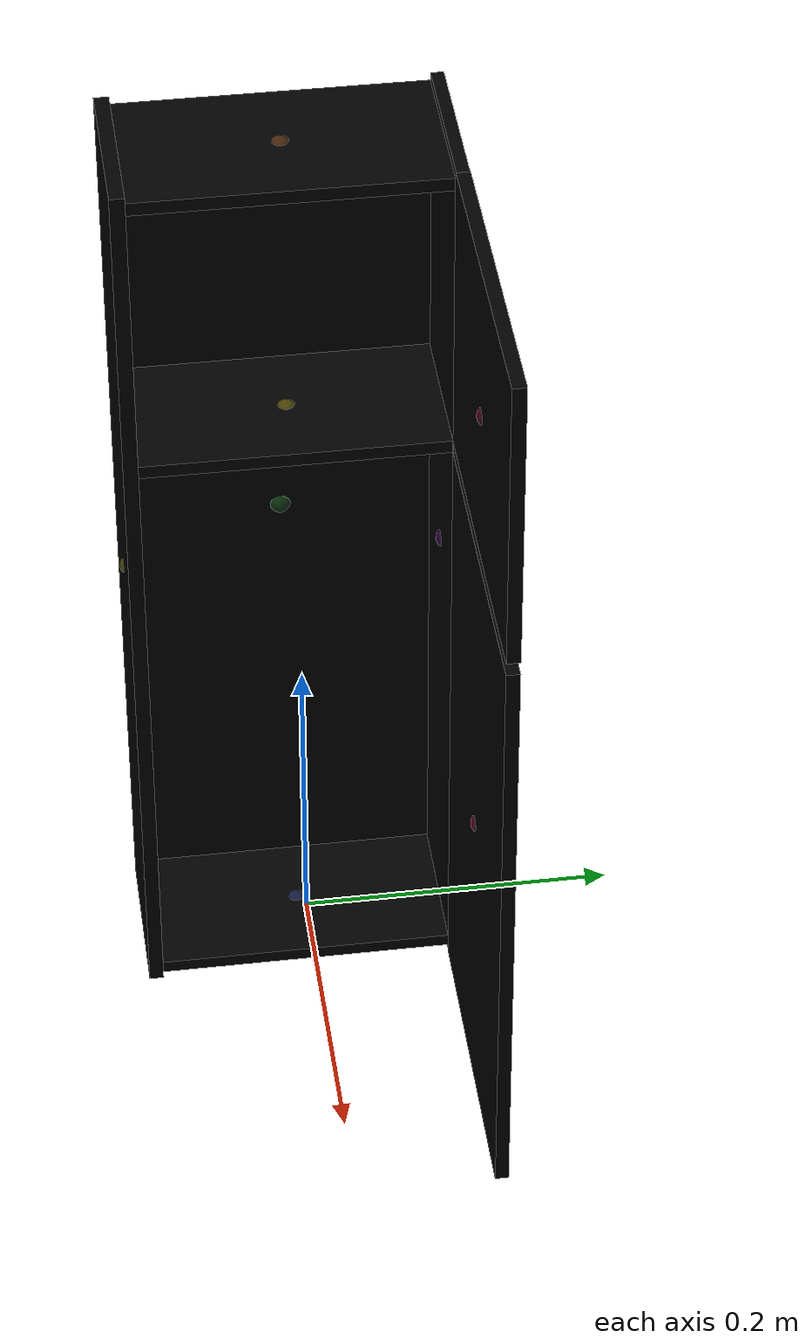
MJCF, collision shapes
<mujoco model="bookcase_1">
  <custom>
    <numeric data="-0.525676 0.300574 0.004203 0.49885 0.49885 0.501147 0.501147" name="0_part0_initpos" />
    <numeric data="0.045769 0.094294 0.002087 0.5 -0.5 -0.5 -0.5" name="8_part8_initpos" />
    <numeric data="0.267573 0.101832 0.004203 0.707107 0.707107 0.0 -0.0" name="7_part7_initpos" />
    <numeric data="0.445945 0.119366 0.00363 0.0 0.0 0.707107 -0.707107" name="5_part5_initpos" />
    <numeric data="-0.177244 0.307642 0.004203 1.0 0.0 -0.0 0.000819" name="4_part4_initpos" />
    <numeric data="-0.176882 -0.220552 0.004203 1.0 0.0 0.0 -0.0" name="3_part3_initpos" />
    <numeric data="-0.169219 0.030229 0.004203 0.999999 -0.0 -0.0 -0.001234" name="2_part2_initpos" />
    <numeric data="-0.417963 -0.033232 0.004307 0.707107 0.707107 0.000188 0.000188" name="1_part1_initpos" />
  </custom>
  <asset>
    <mesh file="bookcase_1/0.stl" name="part0" scale="0.00033333 0.00033333 0.00033333" />
    <mesh file="bookcase_1/8.stl" name="part8" scale="0.00033333 0.00033333 0.00033333" />
    <mesh file="bookcase_1/7.stl" name="part7" scale="0.00033333 0.00033333 0.00033333" />
    <mesh file="bookcase_1/5.stl" name="part5" scale="0.00033333 0.00033333 0.00033333" />
    <mesh file="bookcase_1/4.stl" name="part4" scale="0.00033333 0.00033333 0.00033333" />
    <mesh file="bookcase_1/3.stl" name="part3" scale="0.00033333 0.00033333 0.00033333" />
    <mesh file="bookcase_1/2.stl" name="part2" scale="0.00033333 0.00033333 0.00033333" />
    <mesh file="bookcase_1/1.stl" name="part1" scale="0.00033333 0.00033333 0.00033333" />
  </asset>
  <worldbody><body name="combined_body" pos="0.16 0.09 0.20879696013793944" quat="1 0 0 0"><geom conaffinity="0" contype="0" density="0" mesh="part0" name="0_part0_mesh" pos="0.0 -3.3333e-11 -0.0" rgba="0.82 0.71 0.55 1" type="mesh" quat="1 0 0 0" />
      <geom density="50" name="noviz_collision_0_part0_0" pos="0.0 -3.3333e-11 -0.0" quat="1 0 0 0" rgba="0 0 0 0" size="0.101598984 0.0042333009999 0.20531461350000005" solref="0.001 1" type="box" />
    <site name="0_part0_horizontal_radius_site" pos="0.0 -3.3333e-11 -0.0" quat="1 0 0 0" rgba="0 0 0 0" size="0.00033333" />
      <site name="0_part0_top_site" pos="0.0 -3.3333e-11 -0.0" quat="1 0 0 0" rgba="0 0 0 0" size="0.00033333" />
      <site name="0_part0_bottom_site" pos="0.0 -3.3333e-11 -0.0" quat="1 0 0 0" rgba="0 0 0 0" size="0.00033333" />
      <site name="0_part0_corner_site8" pos="0.0 -3.3333e-11 -0.0" quat="1 0 0 0" rgba="0 0 0 0" size="0.006666600000000001" />
      <site name="0_part0_corner_site7" pos="0.0 -3.3333e-11 -0.0" quat="1 0 0 0" rgba="0 0 0 0" size="0.006666600000000001" />
      <site name="0_part0_corner_site6" pos="0.0 -3.3333e-11 -0.0" quat="1 0 0 0" rgba="0 0 0 0" size="0.006666600000000001" />
      <site name="0_part0_corner_site5" pos="0.0 -3.3333e-11 -0.0" quat="1 0 0 0" rgba="0 0 0 0" size="0.006666600000000001" />
      <site name="0_part0_corner_site4" pos="0.0 -3.3333e-11 -0.0" quat="1 0 0 0" rgba="0 0 0 0" size="0.006666600000000001" />
      <site name="0_part0_corner_site3" pos="0.0 -3.3333e-11 -0.0" quat="1 0 0 0" rgba="0 0 0 0" size="0.006666600000000001" />
      <site name="0_part0_corner_site2" pos="0.0 -3.3333e-11 -0.0" quat="1 0 0 0" rgba="0 0 0 0" size="0.006666600000000001" />
      <site name="0_part0_corner_site1" pos="0.0 -3.3333e-11 -0.0" quat="1 0 0 0" rgba="0 0 0 0" size="0.006666600000000001" />
      <site name="topcover-rightwall,0,conn_site1" pos="0.0 -3.3333e-11 -0.0" quat="1 0 0 0" rgba="0.9019 0.0980 0.2941 0.3" size="0.006666600000000001" />
      <geom conaffinity="0" contype="0" density="0" mesh="part8" name="8_part8_mesh" pos="-0.201081322599999 -0.09736568870004302 0.09948233643335401" rgba="0.82 0.71 0.55 1" type="mesh" quat="1 0 0 0" />
      <geom density="50" name="noviz_collision_8_part8_0" pos="-0.201081322599999 -0.09736568870004302 0.09948233643335401" quat="1 0 0 0" rgba="0 0 0 0" size="0.0021166388334 0.09736569300000002 0.29633037" solref="0.001 1" type="box" />
    <site name="8_part8_horizontal_radius_site" pos="-0.201081322599999 -0.09736568870004302 0.09948233643335401" quat="1 0 0 0" rgba="0 0 0 0" size="0.00033333" />
      <site name="8_part8_top_site" pos="-0.201081322599999 -0.09736568870004302 0.09948233643335401" quat="1 0 0 0" rgba="0 0 0 0" size="0.00033333" />
      <site name="8_part8_bottom_site" pos="-0.201081322599999 -0.09736568870004302 0.09948233643335401" quat="1 0 0 0" rgba="0 0 0 0" size="0.00033333" />
      <site name="8_part8_corner_site8" pos="-0.201081322599999 -0.09736568870004302 0.09948233643335401" quat="1 0 0 0" rgba="0 0 0 0" size="0.006666600000000001" />
      <site name="8_part8_corner_site7" pos="-0.201081322599999 -0.09736568870004302 0.09948233643335401" quat="1 0 0 0" rgba="0 0 0 0" size="0.006666600000000001" />
      <site name="8_part8_corner_site6" pos="-0.201081322599999 -0.09736568870004302 0.09948233643335401" quat="1 0 0 0" rgba="0 0 0 0" size="0.006666600000000001" />
      <site name="8_part8_corner_site5" pos="-0.201081322599999 -0.09736568870004302 0.09948233643335401" quat="1 0 0 0" rgba="0 0 0 0" size="0.006666600000000001" />
      <site name="8_part8_corner_site4" pos="-0.201081322599999 -0.09736568870004302 0.09948233643335401" quat="1 0 0 0" rgba="0 0 0 0" size="0.006666600000000001" />
      <site name="8_part8_corner_site3" pos="-0.201081322599999 -0.09736568870004302 0.09948233643335401" quat="1 0 0 0" rgba="0 0 0 0" size="0.006666600000000001" />
      <site name="8_part8_corner_site2" pos="-0.201081322599999 -0.09736568870004302 0.09948233643335401" quat="1 0 0 0" rgba="0 0 0 0" size="0.006666600000000001" />
      <site name="8_part8_corner_site1" pos="-0.201081322599999 -0.09736568870004302 0.09948233643335401" quat="1 0 0 0" rgba="0 0 0 0" size="0.006666600000000001" />
      <site name="back-top,0,conn_site1" pos="-0.201081322599999 -0.09736568870004302 0.09948233643335401" quat="1 0 0 0" rgba="0.2352 0.7058 0.2941 0.3" size="0.006666600000000001" />
      <geom conaffinity="0" contype="0" density="0" mesh="part7" name="7_part7_mesh" pos="-0.15239847310002902 -0.19473138293336403 0.09948234256662601" rgba="0.82 0.71 0.55 1" type="mesh" quat="1 0 0 0" />
      <geom density="50" name="noviz_collision_7_part7_0" pos="-0.15239847310002902 -0.19473138293336403 0.09948234256662601" quat="1 0 0 0" rgba="0 0 0 0" size="0.05162485041300001 0.0045199747998 0.304796952" solref="0.001 1" type="box" />
    <site name="7_part7_horizontal_radius_site" pos="-0.15239847310002902 -0.19473138293336403 0.09948234256662601" quat="1 0 0 0" rgba="0 0 0 0" size="0.00033333" />
      <site name="7_part7_top_site" pos="-0.15239847310002902 -0.19473138293336403 0.09948234256662601" quat="1 0 0 0" rgba="0 0 0 0" size="0.00033333" />
      <site name="7_part7_bottom_site" pos="-0.15239847310002902 -0.19473138293336403 0.09948234256662601" quat="1 0 0 0" rgba="0 0 0 0" size="0.00033333" />
      <site name="7_part7_corner_site8" pos="-0.15239847310002902 -0.19473138293336403 0.09948234256662601" quat="1 0 0 0" rgba="0 0 0 0" size="0.006666600000000001" />
      <site name="7_part7_corner_site7" pos="-0.15239847310002902 -0.19473138293336403 0.09948234256662601" quat="1 0 0 0" rgba="0 0 0 0" size="0.006666600000000001" />
      <site name="7_part7_corner_site6" pos="-0.15239847310002902 -0.19473138293336403 0.09948234256662601" quat="1 0 0 0" rgba="0 0 0 0" size="0.006666600000000001" />
      <site name="7_part7_corner_site5" pos="-0.15239847310002902 -0.19473138293336403 0.09948234256662601" quat="1 0 0 0" rgba="0 0 0 0" size="0.006666600000000001" />
      <site name="7_part7_corner_site4" pos="-0.15239847310002902 -0.19473138293336403 0.09948234256662601" quat="1 0 0 0" rgba="0 0 0 0" size="0.006666600000000001" />
      <site name="7_part7_corner_site3" pos="-0.15239847310002902 -0.19473138293336403 0.09948234256662601" quat="1 0 0 0" rgba="0 0 0 0" size="0.006666600000000001" />
      <site name="7_part7_corner_site2" pos="-0.15239847310002902 -0.19473138293336403 0.09948234256662601" quat="1 0 0 0" rgba="0 0 0 0" size="0.006666600000000001" />
      <site name="7_part7_corner_site1" pos="-0.15239847310002902 -0.19473138293336403 0.09948234256662601" quat="1 0 0 0" rgba="0 0 0 0" size="0.006666600000000001" />
      <site name="leftwall-shelf,conn_site1" pos="-0.15239847310002902 -0.19473138293336403 0.09948234256662601" quat="1 0 0 0" rgba="1.0 0.8823 0.0980 0.3" size="0.006666600000000001" />
      <site name="leftwall-bottom,0,conn_site1" pos="-0.15239847310002902 -0.19473138293336403 0.09948234256662601" quat="1 0 0 0" rgba="0.2627 0.3882 0.8470 0.3" size="0.006666600000000001" />
      <site name="leftwall-top,0,conn_site1" pos="-0.15239847310002902 -0.19473138293336403 0.09948234256662601" quat="1 0 0 0" rgba="0.9607 0.5098 0.1921 0.3" size="0.006666600000000001" />
      <geom conaffinity="0" contype="0" density="0" mesh="part5" name="5_part5_mesh" pos="-0.15239847310002902 -3.3333e-11 0.09948234256662601" rgba="0.82 0.71 0.55 1" type="mesh" quat="1 0 0 0" />
      <geom density="50" name="noviz_collision_5_part5_0" pos="-0.15239847310002902 -3.3333e-11 0.09948234256662601" quat="1 0 0 0" rgba="0 0 0 0" size="0.05162485041300001 0.0039466272 0.304796952" solref="0.001 1" type="box" />
    <site name="5_part5_horizontal_radius_site" pos="-0.15239847310002902 -3.3333e-11 0.09948234256662601" quat="1 0 0 0" rgba="0 0 0 0" size="0.00033333" />
      <site name="5_part5_top_site" pos="-0.15239847310002902 -3.3333e-11 0.09948234256662601" quat="1 0 0 0" rgba="0 0 0 0" size="0.00033333" />
      <site name="5_part5_bottom_site" pos="-0.15239847310002902 -3.3333e-11 0.09948234256662601" quat="1 0 0 0" rgba="0 0 0 0" size="0.00033333" />
      <site name="5_part5_corner_site8" pos="-0.15239847310002902 -3.3333e-11 0.09948234256662601" quat="1 0 0 0" rgba="0 0 0 0" size="0.006666600000000001" />
      <site name="5_part5_corner_site7" pos="-0.15239847310002902 -3.3333e-11 0.09948234256662601" quat="1 0 0 0" rgba="0 0 0 0" size="0.006666600000000001" />
      <site name="5_part5_corner_site6" pos="-0.15239847310002902 -3.3333e-11 0.09948234256662601" quat="1 0 0 0" rgba="0 0 0 0" size="0.006666600000000001" />
      <site name="5_part5_corner_site5" pos="-0.15239847310002902 -3.3333e-11 0.09948234256662601" quat="1 0 0 0" rgba="0 0 0 0" size="0.006666600000000001" />
      <site name="5_part5_corner_site4" pos="-0.15239847310002902 -3.3333e-11 0.09948234256662601" quat="1 0 0 0" rgba="0 0 0 0" size="0.006666600000000001" />
      <site name="5_part5_corner_site3" pos="-0.15239847310002902 -3.3333e-11 0.09948234256662601" quat="1 0 0 0" rgba="0 0 0 0" size="0.006666600000000001" />
      <site name="5_part5_corner_site2" pos="-0.15239847310002902 -3.3333e-11 0.09948234256662601" quat="1 0 0 0" rgba="0 0 0 0" size="0.006666600000000001" />
      <site name="5_part5_corner_site1" pos="-0.15239847310002902 -3.3333e-11 0.09948234256662601" quat="1 0 0 0" rgba="0 0 0 0" size="0.006666600000000001" />
      <site name="rightwall-top,0,conn_site1" pos="-0.15239847310002902 -3.3333e-11 0.09948234256662601" quat="1 0 0 0" rgba="0.5686 0.1176 0.7058 0.3" size="0.006666600000000001" />
      <site name="rightwall-topcover,0,conn_site2" pos="-0.15239847310002902 -3.3333e-11 0.09948234256662601" quat="1 0 0 0" rgba="0.9019 0.0980 0.2941 0.3" size="0.006666600000000001" />
      <site name="rightwall-topcover,0,conn_site1" pos="-0.15239847310002902 -3.3333e-11 0.09948234256662601" quat="1 0 0 0" rgba="0.9019 0.0980 0.2941 0.3" size="0.006666600000000001" />
      <geom conaffinity="0" contype="0" density="0" mesh="part4" name="4_part4_mesh" pos="-0.150281830666665 -0.097365693266664 0.209547908599959" rgba="0.82 0.71 0.55 1" type="mesh" quat="1 0 0 0" />
      <geom density="50" name="noviz_collision_4_part4_0" pos="-0.150281830666665 -0.097365693266664 0.209547908599959" quat="1 0 0 0" rgba="0 0 0 0" size="0.04858824744600001 0.093132402 0.0042332743335" solref="0.001 1" type="box" />
    <site name="4_part4_horizontal_radius_site" pos="-0.150281830666665 -0.097365693266664 0.209547908599959" quat="1 0 0 0" rgba="0 0 0 0" size="0.00033333" />
      <site name="4_part4_top_site" pos="-0.150281830666665 -0.097365693266664 0.209547908599959" quat="1 0 0 0" rgba="0 0 0 0" size="0.00033333" />
      <site name="4_part4_bottom_site" pos="-0.150281830666665 -0.097365693266664 0.209547908599959" quat="1 0 0 0" rgba="0 0 0 0" size="0.00033333" />
      <site name="4_part4_corner_site8" pos="-0.150281830666665 -0.097365693266664 0.209547908599959" quat="1 0 0 0" rgba="0 0 0 0" size="0.006666600000000001" />
      <site name="4_part4_corner_site7" pos="-0.150281830666665 -0.097365693266664 0.209547908599959" quat="1 0 0 0" rgba="0 0 0 0" size="0.006666600000000001" />
      <site name="4_part4_corner_site6" pos="-0.150281830666665 -0.097365693266664 0.209547908599959" quat="1 0 0 0" rgba="0 0 0 0" size="0.006666600000000001" />
      <site name="4_part4_corner_site5" pos="-0.150281830666665 -0.097365693266664 0.209547908599959" quat="1 0 0 0" rgba="0 0 0 0" size="0.006666600000000001" />
      <site name="4_part4_corner_site4" pos="-0.150281830666665 -0.097365693266664 0.209547908599959" quat="1 0 0 0" rgba="0 0 0 0" size="0.006666600000000001" />
      <site name="4_part4_corner_site3" pos="-0.150281830666665 -0.097365693266664 0.209547908599959" quat="1 0 0 0" rgba="0 0 0 0" size="0.006666600000000001" />
      <site name="4_part4_corner_site2" pos="-0.150281830666665 -0.097365693266664 0.209547908599959" quat="1 0 0 0" rgba="0 0 0 0" size="0.006666600000000001" />
      <site name="4_part4_corner_site1" pos="-0.150281830666665 -0.097365693266664 0.209547908599959" quat="1 0 0 0" rgba="0 0 0 0" size="0.006666600000000001" />
      <site name="shelf-leftwall,conn_site1" pos="-0.150281830666665 -0.097365693266664 0.209547908599959" quat="1 0 0 0" rgba="1.0 0.8823 0.0980 0.3" size="0.006666600000000001" />
      <geom conaffinity="0" contype="0" density="0" mesh="part3" name="3_part3_mesh" pos="-0.15239847310002902 -0.097365693266664 -0.19684803556662603" rgba="0.82 0.71 0.55 1" type="mesh" quat="1 0 0 0" />
      <geom density="50" name="noviz_collision_3_part3_0" pos="-0.15239847310002902 -0.097365693266664 -0.19684803556662603" quat="1 0 0 0" rgba="0 0 0 0" size="0.05064456021600001 0.093132402 0.00425262414" solref="0.001 1" type="box" />
    <site name="3_part3_horizontal_radius_site" pos="-0.15239847310002902 -0.097365693266664 -0.19684803556662603" quat="1 0 0 0" rgba="0 0 0 0" size="0.00033333" />
      <site name="3_part3_top_site" pos="-0.15239847310002902 -0.097365693266664 -0.19684803556662603" quat="1 0 0 0" rgba="0 0 0 0" size="0.00033333" />
      <site name="3_part3_bottom_site" pos="-0.15239847310002902 -0.097365693266664 -0.19684803556662603" quat="1 0 0 0" rgba="0 0 0 0" size="0.00033333" />
      <site name="3_part3_corner_site8" pos="-0.15239847310002902 -0.097365693266664 -0.19684803556662603" quat="1 0 0 0" rgba="0 0 0 0" size="0.006666600000000001" />
      <site name="3_part3_corner_site7" pos="-0.15239847310002902 -0.097365693266664 -0.19684803556662603" quat="1 0 0 0" rgba="0 0 0 0" size="0.006666600000000001" />
      <site name="3_part3_corner_site6" pos="-0.15239847310002902 -0.097365693266664 -0.19684803556662603" quat="1 0 0 0" rgba="0 0 0 0" size="0.006666600000000001" />
      <site name="3_part3_corner_site5" pos="-0.15239847310002902 -0.097365693266664 -0.19684803556662603" quat="1 0 0 0" rgba="0 0 0 0" size="0.006666600000000001" />
      <site name="3_part3_corner_site4" pos="-0.15239847310002902 -0.097365693266664 -0.19684803556662603" quat="1 0 0 0" rgba="0 0 0 0" size="0.006666600000000001" />
      <site name="3_part3_corner_site3" pos="-0.15239847310002902 -0.097365693266664 -0.19684803556662603" quat="1 0 0 0" rgba="0 0 0 0" size="0.006666600000000001" />
      <site name="3_part3_corner_site2" pos="-0.15239847310002902 -0.097365693266664 -0.19684803556662603" quat="1 0 0 0" rgba="0 0 0 0" size="0.006666600000000001" />
      <site name="3_part3_corner_site1" pos="-0.15239847310002902 -0.097365693266664 -0.19684803556662603" quat="1 0 0 0" rgba="0 0 0 0" size="0.006666600000000001" />
      <site name="bottom-leftwall,0,conn_site1" pos="-0.15239847310002902 -0.097365693266664 -0.19684803556662603" quat="1 0 0 0" rgba="0.2627 0.3882 0.8470 0.3" size="0.006666600000000001" />
      <geom conaffinity="0" contype="0" density="0" mesh="part2" name="2_part2_mesh" pos="-0.15239847310002902 -0.097365693266664 0.395812696266789" rgba="0.82 0.71 0.55 1" type="mesh" quat="1 0 0 0" />
      <geom density="50" name="noviz_collision_2_part2_0" pos="-0.15239847310002902 -0.097365693266664 0.395812696266789" quat="1 0 0 0" rgba="0 0 0 0" size="0.05064456021600001 0.093132402 0.0042139878597" solref="0.001 1" type="box" />
    <site name="2_part2_horizontal_radius_site" pos="-0.15239847310002902 -0.097365693266664 0.395812696266789" quat="1 0 0 0" rgba="0 0 0 0" size="0.00033333" />
      <site name="2_part2_top_site" pos="-0.15239847310002902 -0.097365693266664 0.395812696266789" quat="1 0 0 0" rgba="0 0 0 0" size="0.00033333" />
      <site name="2_part2_bottom_site" pos="-0.15239847310002902 -0.097365693266664 0.395812696266789" quat="1 0 0 0" rgba="0 0 0 0" size="0.00033333" />
      <site name="2_part2_corner_site8" pos="-0.15239847310002902 -0.097365693266664 0.395812696266789" quat="1 0 0 0" rgba="0 0 0 0" size="0.006666600000000001" />
      <site name="2_part2_corner_site7" pos="-0.15239847310002902 -0.097365693266664 0.395812696266789" quat="1 0 0 0" rgba="0 0 0 0" size="0.006666600000000001" />
      <site name="2_part2_corner_site6" pos="-0.15239847310002902 -0.097365693266664 0.395812696266789" quat="1 0 0 0" rgba="0 0 0 0" size="0.006666600000000001" />
      <site name="2_part2_corner_site5" pos="-0.15239847310002902 -0.097365693266664 0.395812696266789" quat="1 0 0 0" rgba="0 0 0 0" size="0.006666600000000001" />
      <site name="2_part2_corner_site4" pos="-0.15239847310002902 -0.097365693266664 0.395812696266789" quat="1 0 0 0" rgba="0 0 0 0" size="0.006666600000000001" />
      <site name="2_part2_corner_site3" pos="-0.15239847310002902 -0.097365693266664 0.395812696266789" quat="1 0 0 0" rgba="0 0 0 0" size="0.006666600000000001" />
      <site name="2_part2_corner_site2" pos="-0.15239847310002902 -0.097365693266664 0.395812696266789" quat="1 0 0 0" rgba="0 0 0 0" size="0.006666600000000001" />
      <site name="2_part2_corner_site1" pos="-0.15239847310002902 -0.097365693266664 0.395812696266789" quat="1 0 0 0" rgba="0 0 0 0" size="0.006666600000000001" />
      <site name="top-leftwall,0,conn_site1" pos="-0.15239847310002902 -0.097365693266664 0.395812696266789" quat="1 0 0 0" rgba="0.9607 0.5098 0.1921 0.3" size="0.006666600000000001" />
      <site name="top-back,0,conn_site1" pos="-0.15239847310002902 -0.097365693266664 0.395812696266789" quat="1 0 0 0" rgba="0.2352 0.7058 0.2941 0.3" size="0.006666600000000001" />
      <site name="top-rightwall,0,conn_site1" pos="-0.15239847310002902 -0.097365693266664 0.395812696266789" quat="1 0 0 0" rgba="0.5686 0.1176 0.7058 0.3" size="0.006666600000000001" />
      <geom conaffinity="0" contype="0" density="0" mesh="part1" name="1_part1_mesh" pos="0.0 -3.3333e-11 0.309030248099949" rgba="0.82 0.71 0.55 1" type="mesh" quat="1 0 0 0" />
      <geom density="50" name="noviz_collision_1_part1_0" pos="0.0 -3.3333e-11 0.309030248099949" quat="1 0 0 0" rgba="0 0 0 0" size="0.101598984 0.0042333009999 0.0952490475" solref="0.001 1" type="box" />
    <site name="1_part1_horizontal_radius_site" pos="0.0 -3.3333e-11 0.309030248099949" quat="1 0 0 0" rgba="0 0 0 0" size="0.00033333" />
      <site name="1_part1_top_site" pos="0.0 -3.3333e-11 0.309030248099949" quat="1 0 0 0" rgba="0 0 0 0" size="0.00033333" />
      <site name="1_part1_bottom_site" pos="0.0 -3.3333e-11 0.309030248099949" quat="1 0 0 0" rgba="0 0 0 0" size="0.00033333" />
      <site name="1_part1_corner_site8" pos="0.0 -3.3333e-11 0.309030248099949" quat="1 0 0 0" rgba="0 0 0 0" size="0.006666600000000001" />
      <site name="1_part1_corner_site7" pos="0.0 -3.3333e-11 0.309030248099949" quat="1 0 0 0" rgba="0 0 0 0" size="0.006666600000000001" />
      <site name="1_part1_corner_site6" pos="0.0 -3.3333e-11 0.309030248099949" quat="1 0 0 0" rgba="0 0 0 0" size="0.006666600000000001" />
      <site name="1_part1_corner_site5" pos="0.0 -3.3333e-11 0.309030248099949" quat="1 0 0 0" rgba="0 0 0 0" size="0.006666600000000001" />
      <site name="1_part1_corner_site4" pos="0.0 -3.3333e-11 0.309030248099949" quat="1 0 0 0" rgba="0 0 0 0" size="0.006666600000000001" />
      <site name="1_part1_corner_site3" pos="0.0 -3.3333e-11 0.309030248099949" quat="1 0 0 0" rgba="0 0 0 0" size="0.006666600000000001" />
      <site name="1_part1_corner_site2" pos="0.0 -3.3333e-11 0.309030248099949" quat="1 0 0 0" rgba="0 0 0 0" size="0.006666600000000001" />
      <site name="1_part1_corner_site1" pos="0.0 -3.3333e-11 0.309030248099949" quat="1 0 0 0" rgba="0 0 0 0" size="0.006666600000000001" />
      <site name="topcover-rightwall,0,conn_site2" pos="0.0 -3.3333e-11 0.309030248099949" quat="1 0 0 0" rgba="0.9019 0.0980 0.2941 0.3" size="0.006666600000000001" />
      </body></worldbody><actuator />
  <sensor />
  <contact />
  <default />
</mujoco>
